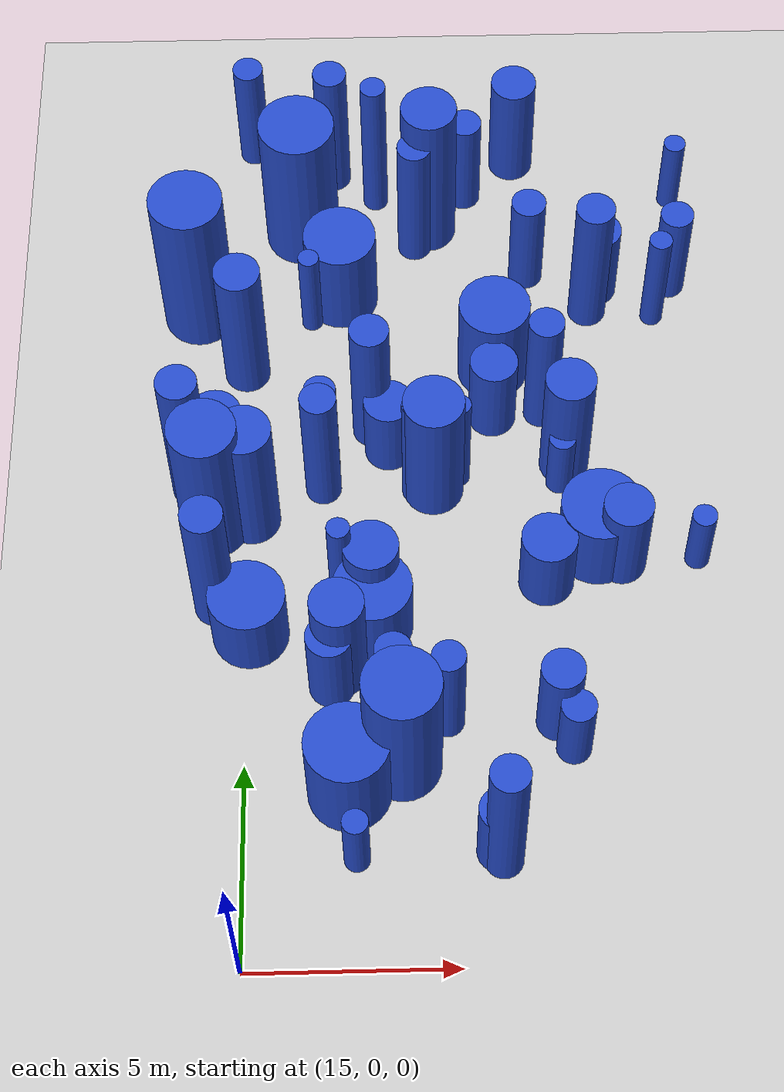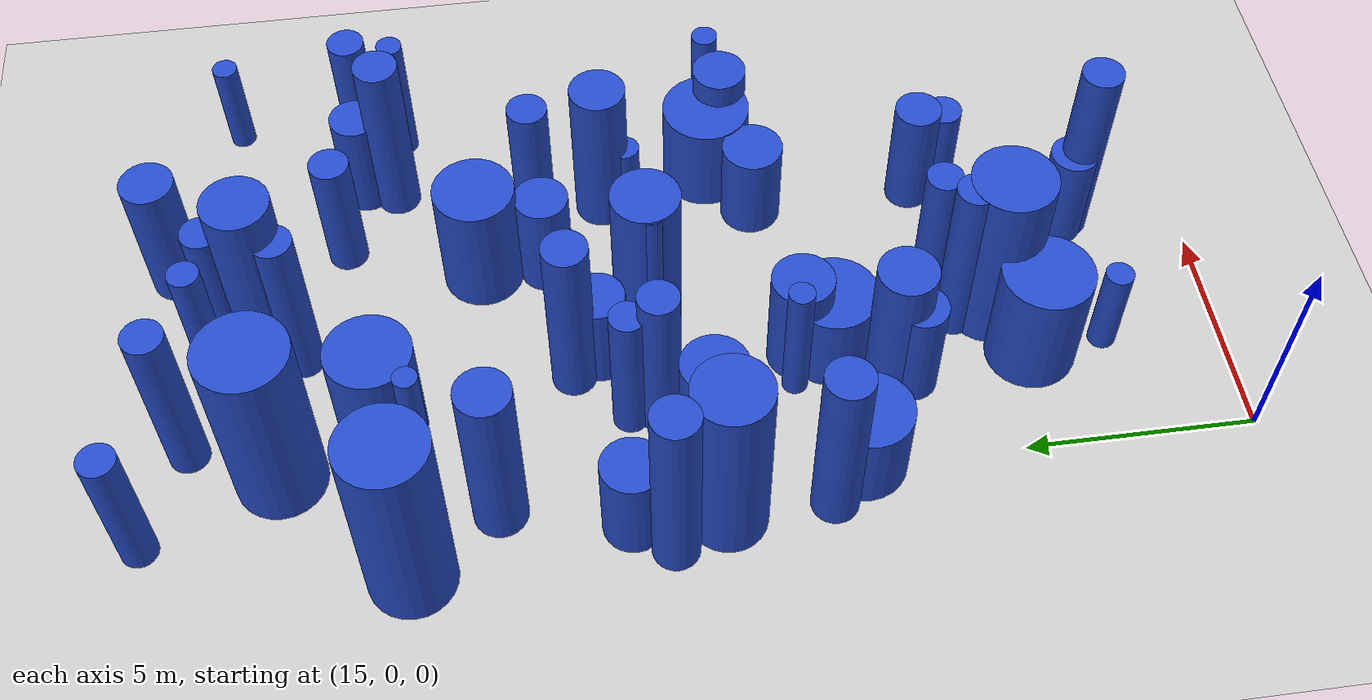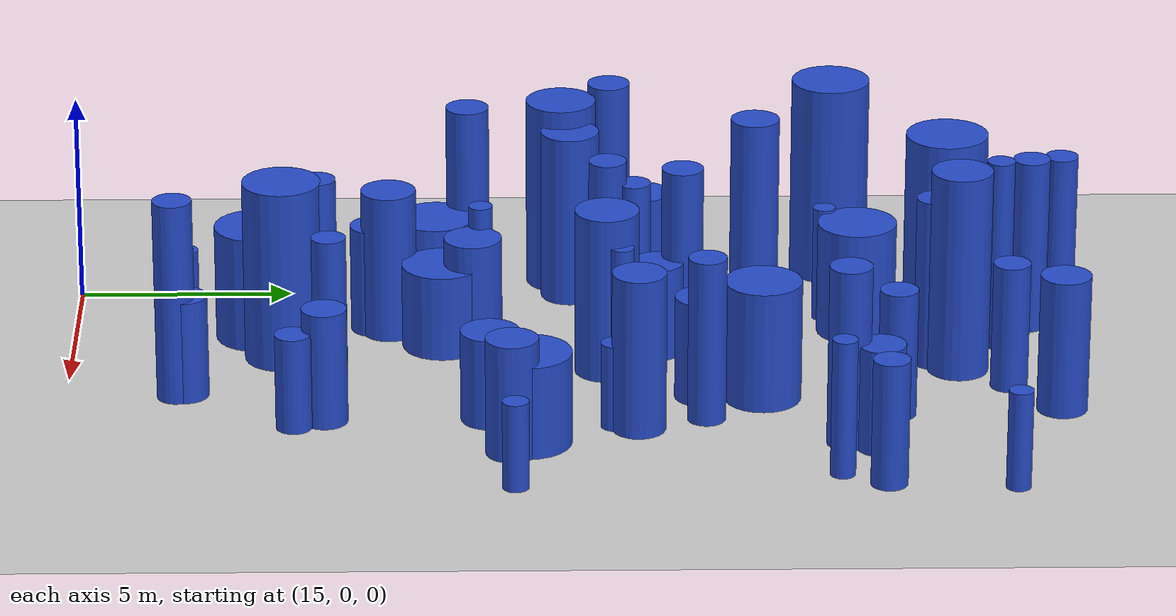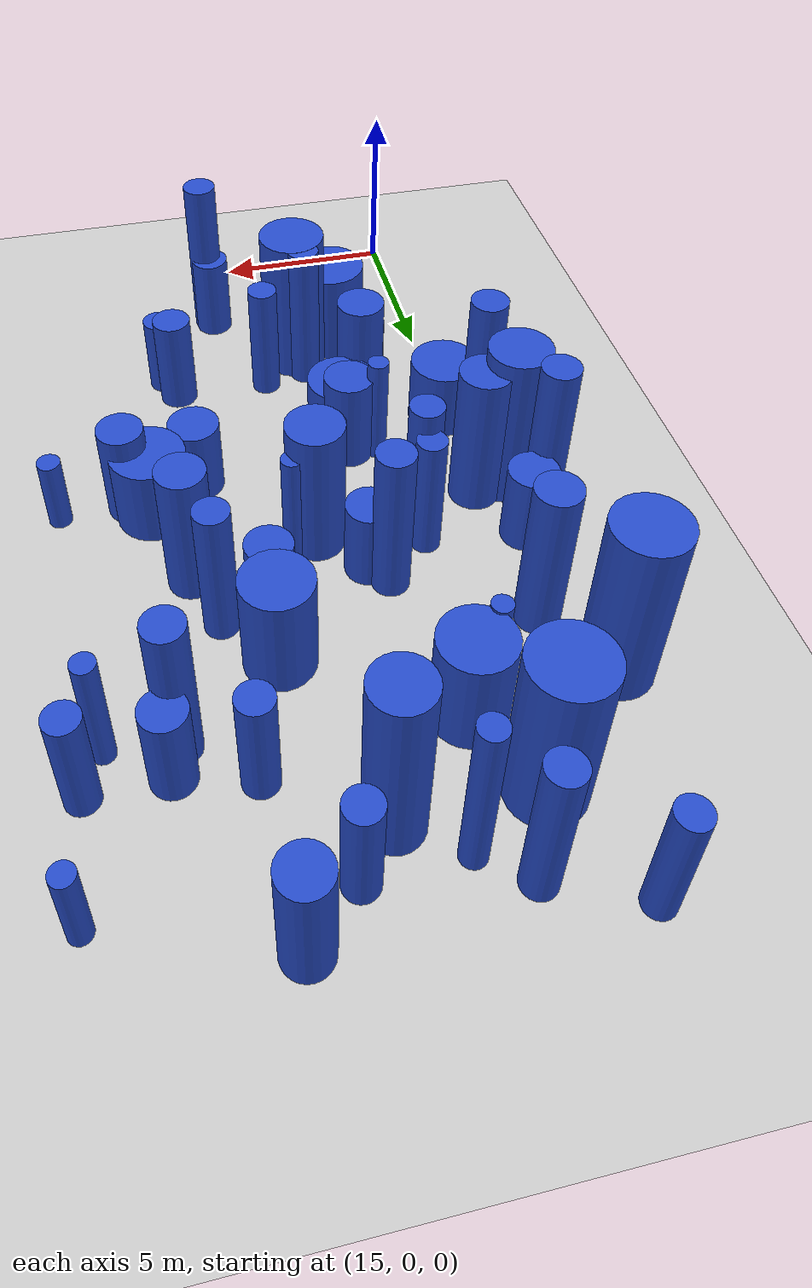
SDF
<sdf version="1.6">
 <world name="default">
  <model name="ground_plane">
   <static>1</static>
   <link name="link">
    <collision name="collision">
     <geometry><plane><normal>0 0 1</normal><size>100 100</size></plane></geometry>
     <surface><friction><ode><mu>100</mu><mu2>50</mu2></ode></friction></surface>
    </collision>
    <visual name="visual">
     <cast_shadows>0</cast_shadows>
     <geometry><plane><normal>0 0 1</normal><size>100 100</size></plane></geometry>
     <material>
      <script><uri>file://media/materials/scripts/gazebo.material</uri><name>Gazebo/Grey</name></script>
     </material>
    </visual>
   </link>
  </model>
  <model name="5">
   <static>0</static>
   <link name="link">
    <inertial>
     <mass>2</mass>
     <inertia>
      <ixx>1.85446</ixx>
      <ixy>0</ixy>
      <ixz>0</ixz>
      <iyy>1.85446</iyy>
      <iyz>0</iyz>
      <izz>0.0841204</izz>
     </inertia>
    </inertial>
    <collision name="collision">
     <geometry><cylinder><length>3.29763</length><radius>0.290035</radius></cylinder></geometry>
     <surface><contact><collide_without_contact>1</collide_without_contact></contact></surface>
    </collision>
    <visual name="visual">
     <geometry><cylinder><length>3.29763</length><radius>0.290035</radius></cylinder></geometry>
     <material>
      <script><uri>file://media/materials/scripts/gazebo.material</uri><name>Gazebo/Blue</name></script>
     </material>
    </visual>
    <gravity>0</gravity>
   </link>
   <pose>25.4526 17.6829 1.64882 0 -0 0</pose>
  </model>
  <model name="7">
   <static>0</static>
   <link name="link">
    <inertial>
     <mass>2</mass>
     <inertia>
      <ixx>0.786749</ixx>
      <ixy>0</ixy>
      <ixz>0</ixz>
      <iyy>0.786749</iyy>
      <iyz>0</iyz>
      <izz>0.0926018</izz>
     </inertia>
    </inertial>
    <collision name="collision">
     <geometry><cylinder><length>2.10777</length><radius>0.304305</radius></cylinder></geometry>
     <surface><contact><collide_without_contact>1</collide_without_contact></contact></surface>
    </collision>
    <visual name="visual">
     <geometry><cylinder><length>2.10777</length><radius>0.304305</radius></cylinder></geometry>
     <material>
      <script><uri>file://media/materials/scripts/gazebo.material</uri><name>Gazebo/Blue</name></script>
     </material>
    </visual>
    <gravity>0</gravity>
   </link>
   <pose>26.0501 10.3515 1.05388 0 -0 0</pose>
  </model>
  <model name="20">
   <static>0</static>
   <link name="link">
    <inertial>
     <mass>2</mass>
     <inertia><ixx>3.66593</ixx><ixy>0</ixy><ixz>0</ixz><iyy>3.66593</iyy><iyz>0</iyz><izz>0.841816</izz></inertia>
    </inertial>
    <collision name="collision">
     <geometry><cylinder><length>4.4125</length><radius>0.917505</radius></cylinder></geometry>
     <surface><contact><collide_without_contact>1</collide_without_contact></contact></surface>
    </collision>
    <visual name="visual">
     <geometry><cylinder><length>4.4125</length><radius>0.917505</radius></cylinder></geometry>
     <material>
      <script><uri>file://media/materials/scripts/gazebo.material</uri><name>Gazebo/Blue</name></script>
     </material>
    </visual>
    <gravity>0</gravity>
   </link>
   <pose>18.7168 4.95866 2.20625 0 -0 0</pose>
  </model>
  <model name="33">
   <static>0</static>
   <link name="link">
    <inertial>
     <mass>2</mass>
     <inertia><ixx>3.10542</ixx><ixy>0</ixy><ixz>0</ixz><iyy>3.10542</iyy><iyz>0</iyz><izz>0.188951</izz></inertia>
    </inertial>
    <collision name="collision">
     <geometry><cylinder><length>4.25037</length><radius>0.434685</radius></cylinder></geometry>
     <surface><contact><collide_without_contact>1</collide_without_contact></contact></surface>
    </collision>
    <visual name="visual">
     <geometry><cylinder><length>4.25037</length><radius>0.434685</radius></cylinder></geometry>
     <material>
      <script><uri>file://media/materials/scripts/gazebo.material</uri><name>Gazebo/Blue</name></script>
     </material>
    </visual>
    <gravity>0</gravity>
   </link>
   <pose>17.1407 22.5153 2.12519 0 -0 0</pose>
  </model>
  <model name="34">
   <static>0</static>
   <link name="link">
    <inertial>
     <mass>2</mass>
     <inertia>
      <ixx>2.68848</ixx>
      <ixy>0</ixy>
      <ixz>0</ixz>
      <iyy>2.68848</iyy>
      <iyz>0</iyz>
      <izz>0.0949899</izz>
     </inertia>
    </inertial>
    <collision name="collision">
     <geometry><cylinder><length>3.98069</length><radius>0.308204</radius></cylinder></geometry>
     <surface><contact><collide_without_contact>1</collide_without_contact></contact></surface>
    </collision>
    <visual name="visual">
     <geometry><cylinder><length>3.98069</length><radius>0.308204</radius></cylinder></geometry>
     <material>
      <script><uri>file://media/materials/scripts/gazebo.material</uri><name>Gazebo/Blue</name></script>
     </material>
    </visual>
    <gravity>0</gravity>
   </link>
   <pose>19.1357 12.4341 1.99035 0 -0 0</pose>
  </model>
  <model name="42">
   <static>0</static>
   <link name="link">
    <inertial>
     <mass>2</mass>
     <inertia><ixx>2.01453</ixx><ixy>0</ixy><ixz>0</ixz><iyy>2.01453</iyy><iyz>0</iyz><izz>0.344549</izz></inertia>
    </inertial>
    <collision name="collision">
     <geometry><cylinder><length>3.32468</length><radius>0.586983</radius></cylinder></geometry>
     <surface><contact><collide_without_contact>1</collide_without_contact></contact></surface>
    </collision>
    <visual name="visual">
     <geometry><cylinder><length>3.32468</length><radius>0.586983</radius></cylinder></geometry>
     <material>
      <script><uri>file://media/materials/scripts/gazebo.material</uri><name>Gazebo/Blue</name></script>
     </material>
    </visual>
    <gravity>0</gravity>
   </link>
   <pose>21.9562 22.9154 1.66234 0 -0 0</pose>
  </model>
  <model name="51">
   <static>0</static>
   <link name="link">
    <inertial>
     <mass>2</mass>
     <inertia><ixx>1.8187</ixx><ixy>0</ixy><ixz>0</ixz><iyy>1.8187</iyy><iyz>0</iyz><izz>0.803823</izz></inertia>
    </inertial>
    <collision name="collision">
     <geometry><cylinder><length>2.91561</length><radius>0.896562</radius></cylinder></geometry>
     <surface><contact><collide_without_contact>1</collide_without_contact></contact></surface>
    </collision>
    <visual name="visual">
     <geometry><cylinder><length>2.91561</length><radius>0.896562</radius></cylinder></geometry>
     <material>
      <script><uri>file://media/materials/scripts/gazebo.material</uri><name>Gazebo/Blue</name></script>
     </material>
    </visual>
    <gravity>0</gravity>
   </link>
   <pose>21.2134 16.0586 1.4578 0 -0 0</pose>
  </model>
  <model name="52">
   <static>0</static>
   <link name="link">
    <inertial>
     <mass>2</mass>
     <inertia><ixx>2.36568</ixx><ixy>0</ixy><ixz>0</ixz><iyy>2.36568</iyy><iyz>0</iyz><izz>0.418317</izz></inertia>
    </inertial>
    <collision name="collision">
     <geometry><cylinder><length>3.5971</length><radius>0.646775</radius></cylinder></geometry>
     <surface><contact><collide_without_contact>1</collide_without_contact></contact></surface>
    </collision>
    <visual name="visual">
     <geometry><cylinder><length>3.5971</length><radius>0.646775</radius></cylinder></geometry>
     <material>
      <script><uri>file://media/materials/scripts/gazebo.material</uri><name>Gazebo/Blue</name></script>
     </material>
    </visual>
    <gravity>0</gravity>
   </link>
   <pose>17.268 7.40656 1.79855 0 -0 0</pose>
  </model>
  <model name="53">
   <static>0</static>
   <link name="link">
    <inertial>
     <mass>2</mass>
     <inertia><ixx>2.66253</ixx><ixy>0</ixy><ixz>0</ixz><iyy>2.66253</iyy><iyz>0</iyz><izz>0.387502</izz></inertia>
    </inertial>
    <collision name="collision">
     <geometry><cylinder><length>3.84872</length><radius>0.622496</radius></cylinder></geometry>
     <surface><contact><collide_without_contact>1</collide_without_contact></contact></surface>
    </collision>
    <visual name="visual">
     <geometry><cylinder><length>3.84872</length><radius>0.622496</radius></cylinder></geometry>
     <material>
      <script><uri>file://media/materials/scripts/gazebo.material</uri><name>Gazebo/Blue</name></script>
     </material>
    </visual>
    <gravity>0</gravity>
   </link>
   <pose>22.9097 13.1703 1.92436 0 -0 0</pose>
  </model>
  <model name="69">
   <static>0</static>
   <link name="link">
    <inertial>
     <mass>2</mass>
     <inertia><ixx>1.2354</ixx><ixy>0</ixy><ixz>0</ixz><iyy>1.2354</iyy><iyz>0</iyz><izz>0.302272</izz></inertia>
    </inertial>
    <collision name="collision">
     <geometry><cylinder><length>2.5506</length><radius>0.549793</radius></cylinder></geometry>
     <surface><contact><collide_without_contact>1</collide_without_contact></contact></surface>
    </collision>
    <visual name="visual">
     <geometry><cylinder><length>2.5506</length><radius>0.549793</radius></cylinder></geometry>
     <material>
      <script><uri>file://media/materials/scripts/gazebo.material</uri><name>Gazebo/Blue</name></script>
     </material>
    </visual>
    <gravity>0</gravity>
   </link>
   <pose>24.0203 18.6117 1.2753 0 -0 0</pose>
  </model>
  <model name="71">
   <static>0</static>
   <link name="link">
    <inertial>
     <mass>2</mass>
     <inertia><ixx>1.5047</ixx><ixy>0</ixy><ixz>0</ixz><iyy>1.5047</iyy><iyz>0</iyz><izz>0.368322</izz></inertia>
    </inertial>
    <collision name="collision">
     <geometry><cylinder><length>2.81482</length><radius>0.606895</radius></cylinder></geometry>
     <surface><contact><collide_without_contact>1</collide_without_contact></contact></surface>
    </collision>
    <visual name="visual">
     <geometry><cylinder><length>2.81482</length><radius>0.606895</radius></cylinder></geometry>
     <material>
      <script><uri>file://media/materials/scripts/gazebo.material</uri><name>Gazebo/Blue</name></script>
     </material>
    </visual>
    <gravity>0</gravity>
   </link>
   <pose>24.1776 10.2792 1.40741 0 -0 0</pose>
  </model>
  <model name="78">
   <static>0</static>
   <link name="link">
    <inertial>
     <mass>2</mass>
     <inertia><ixx>1.04196</ixx><ixy>0</ixy><ixz>0</ixz><iyy>1.04196</iyy><iyz>0</iyz><izz>0.37835</izz></inertia>
    </inertial>
    <collision name="collision">
     <geometry><cylinder><length>2.26201</length><radius>0.615102</radius></cylinder></geometry>
     <surface><contact><collide_without_contact>1</collide_without_contact></contact></surface>
    </collision>
    <visual name="visual">
     <geometry><cylinder><length>2.26201</length><radius>0.615102</radius></cylinder></geometry>
     <material>
      <script><uri>file://media/materials/scripts/gazebo.material</uri><name>Gazebo/Blue</name></script>
     </material>
    </visual>
    <gravity>0</gravity>
   </link>
   <pose>18.5113 13.6926 1.131 0 -0 0</pose>
  </model>
  <model name="80">
   <static>0</static>
   <link name="link">
    <inertial>
     <mass>2</mass>
     <inertia><ixx>1.70039</ixx><ixy>0</ixy><ixz>0</ixz><iyy>1.70039</iyy><iyz>0</iyz><izz>0.196762</izz></inertia>
    </inertial>
    <collision name="collision">
     <geometry><cylinder><length>3.10033</length><radius>0.443578</radius></cylinder></geometry>
     <surface><contact><collide_without_contact>1</collide_without_contact></contact></surface>
    </collision>
    <visual name="visual">
     <geometry><cylinder><length>3.10033</length><radius>0.443578</radius></cylinder></geometry>
     <material>
      <script><uri>file://media/materials/scripts/gazebo.material</uri><name>Gazebo/Blue</name></script>
     </material>
    </visual>
    <gravity>0</gravity>
   </link>
   <pose>22.1964 19.1009 1.55016 0 -0 0</pose>
  </model>
  <model name="92">
   <static>0</static>
   <link name="link">
    <inertial>
     <mass>2</mass>
     <inertia><ixx>2.9796</ixx><ixy>0</ixy><ixz>0</ixz><iyy>2.9796</iyy><iyz>0</iyz><izz>0.564104</izz></inertia>
    </inertial>
    <collision name="collision">
     <geometry><cylinder><length>4.02309</length><radius>0.751069</radius></cylinder></geometry>
     <surface><contact><collide_without_contact>1</collide_without_contact></contact></surface>
    </collision>
    <visual name="visual">
     <geometry><cylinder><length>4.02309</length><radius>0.751069</radius></cylinder></geometry>
     <material>
      <script><uri>file://media/materials/scripts/gazebo.material</uri><name>Gazebo/Blue</name></script>
     </material>
    </visual>
    <gravity>0</gravity>
   </link>
   <pose>19.6033 12.4969 2.01155 0 -0 0</pose>
  </model>
  <model name="96">
   <static>0</static>
   <link name="link">
    <inertial>
     <mass>2</mass>
     <inertia><ixx>1.3536</ixx><ixy>0</ixy><ixz>0</ixz><iyy>1.3536</iyy><iyz>0</iyz><izz>0.0711329</izz></inertia>
    </inertial>
    <collision name="collision">
     <geometry><cylinder><length>2.81215</length><radius>0.266707</radius></cylinder></geometry>
     <surface><contact><collide_without_contact>1</collide_without_contact></contact></surface>
    </collision>
    <visual name="visual">
     <geometry><cylinder><length>2.81215</length><radius>0.266707</radius></cylinder></geometry>
     <material>
      <script><uri>file://media/materials/scripts/gazebo.material</uri><name>Gazebo/Blue</name></script>
     </material>
    </visual>
    <gravity>0</gravity>
   </link>
   <pose>16.5562 17.6942 1.40608 0 -0 0</pose>
  </model>
  <model name="112">
   <static>0</static>
   <link name="link">
    <inertial>
     <mass>2</mass>
     <inertia><ixx>3.488</ixx><ixy>0</ixy><ixz>0</ixz><iyy>3.488</iyy><iyz>0</iyz><izz>0.261794</izz></inertia>
    </inertial>
    <collision name="collision">
     <geometry><cylinder><length>4.48805</length><radius>0.511658</radius></cylinder></geometry>
     <surface><contact><collide_without_contact>1</collide_without_contact></contact></surface>
    </collision>
    <visual name="visual">
     <geometry><cylinder><length>4.48805</length><radius>0.511658</radius></cylinder></geometry>
     <material>
      <script><uri>file://media/materials/scripts/gazebo.material</uri><name>Gazebo/Blue</name></script>
     </material>
    </visual>
    <gravity>0</gravity>
   </link>
   <pose>14.2304 9.25693 2.24403 0 -0 0</pose>
  </model>
  <model name="129">
   <static>0</static>
   <link name="link">
    <inertial>
     <mass>2</mass>
     <inertia><ixx>1.03231</ixx><ixy>0</ixy><ixz>0</ixz><iyy>1.03231</iyy><iyz>0</iyz><izz>0.463114</izz></inertia>
    </inertial>
    <collision name="collision">
     <geometry><cylinder><length>2.19191</length><radius>0.680525</radius></cylinder></geometry>
     <surface><contact><collide_without_contact>1</collide_without_contact></contact></surface>
    </collision>
    <visual name="visual">
     <geometry><cylinder><length>2.19191</length><radius>0.680525</radius></cylinder></geometry>
     <material>
      <script><uri>file://media/materials/scripts/gazebo.material</uri><name>Gazebo/Blue</name></script>
     </material>
    </visual>
    <gravity>0</gravity>
   </link>
   <pose>22.3022 9.78232 1.09596 0 -0 0</pose>
  </model>
  <model name="135">
   <static>0</static>
   <link name="link">
    <inertial>
     <mass>2</mass>
     <inertia>
      <ixx>1.90516</ixx>
      <ixy>0</ixy>
      <ixz>0</ixz>
      <iyy>1.90516</iyy>
      <iyz>0</iyz>
      <izz>0.0770723</izz>
     </inertia>
    </inertial>
    <collision name="collision">
     <geometry><cylinder><length>3.3466</length><radius>0.277619</radius></cylinder></geometry>
     <surface><contact><collide_without_contact>1</collide_without_contact></contact></surface>
    </collision>
    <visual name="visual">
     <geometry><cylinder><length>3.3466</length><radius>0.277619</radius></cylinder></geometry>
     <material>
      <script><uri>file://media/materials/scripts/gazebo.material</uri><name>Gazebo/Blue</name></script>
     </material>
    </visual>
    <gravity>0</gravity>
   </link>
   <pose>20.2434 12.836 1.6733 0 -0 0</pose>
  </model>
  <model name="162">
   <static>0</static>
   <link name="link">
    <inertial>
     <mass>2</mass>
     <inertia><ixx>2.97159</ixx><ixy>0</ixy><ixz>0</ixz><iyy>2.97159</iyy><iyz>0</iyz><izz>0.193947</izz></inertia>
    </inertial>
    <collision name="collision">
     <geometry><cylinder><length>4.15304</length><radius>0.440394</radius></cylinder></geometry>
     <surface><contact><collide_without_contact>1</collide_without_contact></contact></surface>
    </collision>
    <visual name="visual">
     <geometry><cylinder><length>4.15304</length><radius>0.440394</radius></cylinder></geometry>
     <material>
      <script><uri>file://media/materials/scripts/gazebo.material</uri><name>Gazebo/Blue</name></script>
     </material>
    </visual>
    <gravity>0</gravity>
   </link>
   <pose>19.2849 20.1109 2.07652 0 -0 0</pose>
  </model>
  <model name="166">
   <static>0</static>
   <link name="link">
    <inertial>
     <mass>2</mass>
     <inertia><ixx>3.32749</ixx><ixy>0</ixy><ixz>0</ixz><iyy>3.32749</iyy><iyz>0</iyz><izz>0.185958</izz></inertia>
    </inertial>
    <collision name="collision">
     <geometry><cylinder><length>4.40534</length><radius>0.431229</radius></cylinder></geometry>
     <surface><contact><collide_without_contact>1</collide_without_contact></contact></surface>
    </collision>
    <visual name="visual">
     <geometry><cylinder><length>4.40534</length><radius>0.431229</radius></cylinder></geometry>
     <material>
      <script><uri>file://media/materials/scripts/gazebo.material</uri><name>Gazebo/Blue</name></script>
     </material>
    </visual>
    <gravity>0</gravity>
   </link>
   <pose>18.5444 5.78636 2.20267 0 -0 0</pose>
  </model>
  <model name="190">
   <static>0</static>
   <link name="link">
    <inertial>
     <mass>2</mass>
     <inertia>
      <ixx>1.52095</ixx>
      <ixy>0</ixy>
      <ixz>0</ixz>
      <iyy>1.52095</iyy>
      <iyz>0</iyz>
      <izz>0.0884812</izz>
     </inertia>
    </inertial>
    <collision name="collision">
     <geometry><cylinder><length>2.97662</length><radius>0.297458</radius></cylinder></geometry>
     <surface><contact><collide_without_contact>1</collide_without_contact></contact></surface>
    </collision>
    <visual name="visual">
     <geometry><cylinder><length>2.97662</length><radius>0.297458</radius></cylinder></geometry>
     <material>
      <script><uri>file://media/materials/scripts/gazebo.material</uri><name>Gazebo/Blue</name></script>
     </material>
    </visual>
    <gravity>0</gravity>
   </link>
   <pose>18.8821 4.50562 1.48831 0 -0 0</pose>
  </model>
  <model name="222">
   <static>0</static>
   <link name="link">
    <inertial>
     <mass>2</mass>
     <inertia><ixx>1.44566</ixx><ixy>0</ixy><ixz>0</ixz><iyy>1.44566</iyy><iyz>0</iyz><izz>0.461568</izz></inertia>
    </inertial>
    <collision name="collision">
     <geometry><cylinder><length>2.69986</length><radius>0.679388</radius></cylinder></geometry>
     <surface><contact><collide_without_contact>1</collide_without_contact></contact></surface>
    </collision>
    <visual name="visual">
     <geometry><cylinder><length>2.69986</length><radius>0.679388</radius></cylinder></geometry>
     <material>
      <script><uri>file://media/materials/scripts/gazebo.material</uri><name>Gazebo/Blue</name></script>
     </material>
    </visual>
    <gravity>0</gravity>
   </link>
   <pose>18.0421 9.38761 1.34993 0 -0 0</pose>
  </model>
  <model name="242">
   <static>0</static>
   <link name="link">
    <inertial>
     <mass>2</mass>
     <inertia><ixx>4.07433</ixx><ixy>0</ixy><ixz>0</ixz><iyy>4.07433</iyy><iyz>0</iyz><izz>0.209536</izz></inertia>
    </inertial>
    <collision name="collision">
     <geometry><cylinder><length>4.88031</length><radius>0.457751</radius></cylinder></geometry>
     <surface><contact><collide_without_contact>1</collide_without_contact></contact></surface>
    </collision>
    <visual name="visual">
     <geometry><cylinder><length>4.88031</length><radius>0.457751</radius></cylinder></geometry>
     <material>
      <script><uri>file://media/materials/scripts/gazebo.material</uri><name>Gazebo/Blue</name></script>
     </material>
    </visual>
    <gravity>0</gravity>
   </link>
   <pose>20.9834 2.55197 2.44015 0 -0 0</pose>
  </model>
  <model name="250">
   <static>0</static>
   <link name="link">
    <inertial>
     <mass>2</mass>
     <inertia><ixx>1.22789</ixx><ixy>0</ixy><ixz>0</ixz><iyy>1.22789</iyy><iyz>0</iyz><izz>0.358455</izz></inertia>
    </inertial>
    <collision name="collision">
     <geometry><cylinder><length>2.50838</length><radius>0.598711</radius></cylinder></geometry>
     <surface><contact><collide_without_contact>1</collide_without_contact></contact></surface>
    </collision>
    <visual name="visual">
     <geometry><cylinder><length>2.50838</length><radius>0.598711</radius></cylinder></geometry>
     <material>
      <script><uri>file://media/materials/scripts/gazebo.material</uri><name>Gazebo/Blue</name></script>
     </material>
    </visual>
    <gravity>0</gravity>
   </link>
   <pose>21.1489 14.6276 1.25419 0 -0 0</pose>
  </model>
  <model name="252">
   <static>0</static>
   <link name="link">
    <inertial>
     <mass>2</mass>
     <inertia>
      <ixx>0.980825</ixx>
      <ixy>0</ixy>
      <ixz>0</ixz>
      <iyy>0.980825</iyy>
      <iyz>0</iyz>
      <izz>0.176721</izz>
     </inertia>
    </inertial>
    <collision name="collision">
     <geometry><cylinder><length>2.31404</length><radius>0.420382</radius></cylinder></geometry>
     <surface><contact><collide_without_contact>1</collide_without_contact></contact></surface>
    </collision>
    <visual name="visual">
     <geometry><cylinder><length>2.31404</length><radius>0.420382</radius></cylinder></geometry>
     <material>
      <script><uri>file://media/materials/scripts/gazebo.material</uri><name>Gazebo/Blue</name></script>
     </material>
    </visual>
    <gravity>0</gravity>
   </link>
   <pose>22.7354 5.31263 1.15702 0 -0 0</pose>
  </model>
  <model name="256">
   <static>0</static>
   <link name="link">
    <inertial>
     <mass>2</mass>
     <inertia><ixx>2.07071</ixx><ixy>0</ixy><ixz>0</ixz><iyy>2.07071</iyy><iyz>0</iyz><izz>0.162681</izz></inertia>
    </inertial>
    <collision name="collision">
     <geometry><cylinder><length>3.45488</length><radius>0.403337</radius></cylinder></geometry>
     <surface><contact><collide_without_contact>1</collide_without_contact></contact></surface>
    </collision>
    <visual name="visual">
     <geometry><cylinder><length>3.45488</length><radius>0.403337</radius></cylinder></geometry>
     <material>
      <script><uri>file://media/materials/scripts/gazebo.material</uri><name>Gazebo/Blue</name></script>
     </material>
    </visual>
    <gravity>0</gravity>
   </link>
   <pose>19.7877 6.06477 1.72744 0 -0 0</pose>
  </model>
  <model name="257">
   <static>0</static>
   <link name="link">
    <inertial>
     <mass>2</mass>
     <inertia><ixx>1.08973</ixx><ixy>0</ixy><ixz>0</ixz><iyy>1.08973</iyy><iyz>0</iyz><izz>0.430316</izz></inertia>
    </inertial>
    <collision name="collision">
     <geometry><cylinder><length>2.29072</length><radius>0.655985</radius></cylinder></geometry>
     <surface><contact><collide_without_contact>1</collide_without_contact></contact></surface>
    </collision>
    <visual name="visual">
     <geometry><cylinder><length>2.29072</length><radius>0.655985</radius></cylinder></geometry>
     <material>
      <script><uri>file://media/materials/scripts/gazebo.material</uri><name>Gazebo/Blue</name></script>
     </material>
    </visual>
    <gravity>0</gravity>
   </link>
   <pose>14.2529 13.4319 1.14536 0 -0 0</pose>
  </model>
  <model name="260">
   <static>0</static>
   <link name="link">
    <inertial>
     <mass>2</mass>
     <inertia><ixx>4.44356</ixx><ixy>0</ixy><ixz>0</ixz><iyy>4.44356</iyy><iyz>0</iyz><izz>0.86281</izz></inertia>
    </inertial>
    <collision name="collision">
     <geometry><cylinder><length>4.90642</length><radius>0.928875</radius></cylinder></geometry>
     <surface><contact><collide_without_contact>1</collide_without_contact></contact></surface>
    </collision>
    <visual name="visual">
     <geometry><cylinder><length>4.90642</length><radius>0.928875</radius></cylinder></geometry>
     <material>
      <script><uri>file://media/materials/scripts/gazebo.material</uri><name>Gazebo/Blue</name></script>
     </material>
    </visual>
    <gravity>0</gravity>
   </link>
   <pose>13.6186 17.9647 2.45321 0 -0 0</pose>
  </model>
  <model name="262">
   <static>0</static>
   <link name="link">
    <inertial>
     <mass>2</mass>
     <inertia><ixx>2.23197</ixx><ixy>0</ixy><ixz>0</ixz><iyy>2.23197</iyy><iyz>0</iyz><izz>0.15109</izz></inertia>
    </inertial>
    <collision name="collision">
     <geometry><cylinder><length>3.59702</length><radius>0.388703</radius></cylinder></geometry>
     <surface><contact><collide_without_contact>1</collide_without_contact></contact></surface>
    </collision>
    <visual name="visual">
     <geometry><cylinder><length>3.59702</length><radius>0.388703</radius></cylinder></geometry>
     <material>
      <script><uri>file://media/materials/scripts/gazebo.material</uri><name>Gazebo/Blue</name></script>
     </material>
    </visual>
    <gravity>0</gravity>
   </link>
   <pose>16.882 13.1905 1.79851 0 -0 0</pose>
  </model>
  <model name="279">
   <static>0</static>
   <link name="link">
    <inertial>
     <mass>2</mass>
     <inertia>
      <ixx>0.773838</ixx>
      <ixy>0</ixy>
      <ixz>0</ixz>
      <iyy>0.773838</iyy>
      <iyz>0</iyz>
      <izz>0.110661</izz>
     </inertia>
    </inertial>
    <collision name="collision">
     <geometry><cylinder><length>2.07631</length><radius>0.332657</radius></cylinder></geometry>
     <surface><contact><collide_without_contact>1</collide_without_contact></contact></surface>
    </collision>
    <visual name="visual">
     <geometry><cylinder><length>2.07631</length><radius>0.332657</radius></cylinder></geometry>
     <material>
      <script><uri>file://media/materials/scripts/gazebo.material</uri><name>Gazebo/Blue</name></script>
     </material>
    </visual>
    <gravity>0</gravity>
   </link>
   <pose>22.7639 12.6322 1.03815 0 -0 0</pose>
  </model>
  <model name="282">
   <static>0</static>
   <link name="link">
    <inertial>
     <mass>2</mass>
     <inertia><ixx>2.96456</ixx><ixy>0</ixy><ixz>0</ixz><iyy>2.96456</iyy><iyz>0</iyz><izz>0.198054</izz></inertia>
    </inertial>
    <collision name="collision">
     <geometry><cylinder><length>4.14647</length><radius>0.445032</radius></cylinder></geometry>
     <surface><contact><collide_without_contact>1</collide_without_contact></contact></surface>
    </collision>
    <visual name="visual">
     <geometry><cylinder><length>4.14647</length><radius>0.445032</radius></cylinder></geometry>
     <material>
      <script><uri>file://media/materials/scripts/gazebo.material</uri><name>Gazebo/Blue</name></script>
     </material>
    </visual>
    <gravity>0</gravity>
   </link>
   <pose>16.8539 12.5617 2.07324 0 -0 0</pose>
  </model>
  <model name="293">
   <static>0</static>
   <link name="link">
    <inertial>
     <mass>2</mass>
     <inertia><ixx>1.30417</ixx><ixy>0</ixy><ixz>0</ixz><iyy>1.30417</iyy><iyz>0</iyz><izz>0.310455</izz></inertia>
    </inertial>
    <collision name="collision">
     <geometry><cylinder><length>2.62558</length><radius>0.557185</radius></cylinder></geometry>
     <surface><contact><collide_without_contact>1</collide_without_contact></contact></surface>
    </collision>
    <visual name="visual">
     <geometry><cylinder><length>2.62558</length><radius>0.557185</radius></cylinder></geometry>
     <material>
      <script><uri>file://media/materials/scripts/gazebo.material</uri><name>Gazebo/Blue</name></script>
     </material>
    </visual>
    <gravity>0</gravity>
   </link>
   <pose>17.0593 7.05036 1.31279 0 -0 0</pose>
  </model>
  <model name="312">
   <static>0</static>
   <link name="link">
    <inertial>
     <mass>2</mass>
     <inertia>
      <ixx>0.897368</ixx>
      <ixy>0</ixy>
      <ixz>0</ixz>
      <iyy>0.897368</iyy>
      <iyz>0</iyz>
      <izz>0.0944157</izz>
     </inertia>
    </inertial>
    <collision name="collision">
     <geometry><cylinder><length>2.25853</length><radius>0.307271</radius></cylinder></geometry>
     <surface><contact><collide_without_contact>1</collide_without_contact></contact></surface>
    </collision>
    <visual name="visual">
     <geometry><cylinder><length>2.25853</length><radius>0.307271</radius></cylinder></geometry>
     <material>
      <script><uri>file://media/materials/scripts/gazebo.material</uri><name>Gazebo/Blue</name></script>
     </material>
    </visual>
    <gravity>0</gravity>
   </link>
   <pose>17.6253 2.63599 1.12927 0 -0 0</pose>
  </model>
  <model name="313">
   <static>0</static>
   <link name="link">
    <inertial>
     <mass>2</mass>
     <inertia><ixx>3.40692</ixx><ixy>0</ixy><ixz>0</ixz><iyy>3.40692</iyy><iyz>0</iyz><izz>0.335244</izz></inertia>
    </inertial>
    <collision name="collision">
     <geometry><cylinder><length>4.4086</length><radius>0.579002</radius></cylinder></geometry>
     <surface><contact><collide_without_contact>1</collide_without_contact></contact></surface>
    </collision>
    <visual name="visual">
     <geometry><cylinder><length>4.4086</length><radius>0.579002</radius></cylinder></geometry>
     <material>
      <script><uri>file://media/materials/scripts/gazebo.material</uri><name>Gazebo/Blue</name></script>
     </material>
    </visual>
    <gravity>0</gravity>
   </link>
   <pose>14.8838 16.1124 2.2043 0 -0 0</pose>
  </model>
  <model name="326">
   <static>0</static>
   <link name="link">
    <inertial>
     <mass>2</mass>
     <inertia><ixx>3.93219</ixx><ixy>0</ixy><ixz>0</ixz><iyy>3.93219</iyy><iyz>0</iyz><izz>0.94302</izz></inertia>
    </inertial>
    <collision name="collision">
     <geometry><cylinder><length>4.55676</length><radius>0.971092</radius></cylinder></geometry>
     <surface><contact><collide_without_contact>1</collide_without_contact></contact></surface>
    </collision>
    <visual name="visual">
     <geometry><cylinder><length>4.55676</length><radius>0.971092</radius></cylinder></geometry>
     <material>
      <script><uri>file://media/materials/scripts/gazebo.material</uri><name>Gazebo/Blue</name></script>
     </material>
    </visual>
    <gravity>0</gravity>
   </link>
   <pose>16.3039 20.5783 2.27838 0 -0 0</pose>
  </model>
  <model name="336">
   <static>0</static>
   <link name="link">
    <inertial>
     <mass>2</mass>
     <inertia>
      <ixx>1.74958</ixx>
      <ixy>0</ixy>
      <ixz>0</ixz>
      <iyy>1.74958</iyy>
      <iyz>0</iyz>
      <izz>0.0806815</izz>
     </inertia>
    </inertial>
    <collision name="collision">
     <geometry><cylinder><length>3.20241</length><radius>0.284045</radius></cylinder></geometry>
     <surface><contact><collide_without_contact>1</collide_without_contact></contact></surface>
    </collision>
    <visual name="visual">
     <geometry><cylinder><length>3.20241</length><radius>0.284045</radius></cylinder></geometry>
     <material>
      <script><uri>file://media/materials/scripts/gazebo.material</uri><name>Gazebo/Blue</name></script>
     </material>
    </visual>
    <gravity>0</gravity>
   </link>
   <pose>17.2965 9.57252 1.6012 0 -0 0</pose>
  </model>
  <model name="345">
   <static>0</static>
   <link name="link">
    <inertial>
     <mass>2</mass>
     <inertia><ixx>3.9159</ixx><ixy>0</ixy><ixz>0</ixz><iyy>3.9159</iyy><iyz>0</iyz><izz>0.691147</izz></inertia>
    </inertial>
    <collision name="collision">
     <geometry><cylinder><length>4.62839</length><radius>0.831353</radius></cylinder></geometry>
     <surface><contact><collide_without_contact>1</collide_without_contact></contact></surface>
    </collision>
    <visual name="visual">
     <geometry><cylinder><length>4.62839</length><radius>0.831353</radius></cylinder></geometry>
     <material>
      <script><uri>file://media/materials/scripts/gazebo.material</uri><name>Gazebo/Blue</name></script>
     </material>
    </visual>
    <gravity>0</gravity>
   </link>
   <pose>14.17 11.4912 2.31419 0 -0 0</pose>
  </model>
  <model name="353">
   <static>0</static>
   <link name="link">
    <inertial>
     <mass>2</mass>
     <inertia><ixx>3.65204</ixx><ixy>0</ixy><ixz>0</ixz><iyy>3.65204</iyy><iyz>0</iyz><izz>0.106101</izz></inertia>
    </inertial>
    <collision name="collision">
     <geometry><cylinder><length>4.64693</length><radius>0.325731</radius></cylinder></geometry>
     <surface><contact><collide_without_contact>1</collide_without_contact></contact></surface>
    </collision>
    <visual name="visual">
     <geometry><cylinder><length>4.64693</length><radius>0.325731</radius></cylinder></geometry>
     <material>
      <script><uri>file://media/materials/scripts/gazebo.material</uri><name>Gazebo/Blue</name></script>
     </material>
    </visual>
    <gravity>0</gravity>
   </link>
   <pose>18.2594 21.6972 2.32346 0 -0 0</pose>
  </model>
  <model name="367">
   <static>0</static>
   <link name="link">
    <inertial>
     <mass>2</mass>
     <inertia><ixx>3.40969</ixx><ixy>0</ixy><ixz>0</ixz><iyy>3.40969</iyy><iyz>0</iyz><izz>0.239374</izz></inertia>
    </inertial>
    <collision name="collision">
     <geometry><cylinder><length>4.44297</length><radius>0.489259</radius></cylinder></geometry>
     <surface><contact><collide_without_contact>1</collide_without_contact></contact></surface>
    </collision>
    <visual name="visual">
     <geometry><cylinder><length>4.44297</length><radius>0.489259</radius></cylinder></geometry>
     <material>
      <script><uri>file://media/materials/scripts/gazebo.material</uri><name>Gazebo/Blue</name></script>
     </material>
    </visual>
    <gravity>0</gravity>
   </link>
   <pose>18.0912 14.2881 2.22149 0 -0 0</pose>
  </model>
  <model name="377">
   <static>0</static>
   <link name="link">
    <inertial>
     <mass>2</mass>
     <inertia><ixx>1.43639</ixx><ixy>0</ixy><ixz>0</ixz><iyy>1.43639</iyy><iyz>0</iyz><izz>0.27141</izz></inertia>
    </inertial>
    <collision name="collision">
     <geometry><cylinder><length>2.79358</length><radius>0.52097</radius></cylinder></geometry>
     <surface><contact><collide_without_contact>1</collide_without_contact></contact></surface>
    </collision>
    <visual name="visual">
     <geometry><cylinder><length>2.79358</length><radius>0.52097</radius></cylinder></geometry>
     <material>
      <script><uri>file://media/materials/scripts/gazebo.material</uri><name>Gazebo/Blue</name></script>
     </material>
    </visual>
    <gravity>0</gravity>
   </link>
   <pose>22.3936 6.01531 1.39679 0 -0 0</pose>
  </model>
  <model name="382">
   <static>0</static>
   <link name="link">
    <inertial>
     <mass>2</mass>
     <inertia><ixx>1.61995</ixx><ixy>0</ixy><ixz>0</ixz><iyy>1.61995</iyy><iyz>0</iyz><izz>0.178659</izz></inertia>
    </inertial>
    <collision name="collision">
     <geometry><cylinder><length>3.03047</length><radius>0.422681</radius></cylinder></geometry>
     <surface><contact><collide_without_contact>1</collide_without_contact></contact></surface>
    </collision>
    <visual name="visual">
     <geometry><cylinder><length>3.03047</length><radius>0.422681</radius></cylinder></geometry>
     <material>
      <script><uri>file://media/materials/scripts/gazebo.material</uri><name>Gazebo/Blue</name></script>
     </material>
    </visual>
    <gravity>0</gravity>
   </link>
   <pose>25.9654 18.6933 1.51523 0 -0 0</pose>
  </model>
  <model name="383">
   <static>0</static>
   <link name="link">
    <inertial>
     <mass>2</mass>
     <inertia><ixx>3.26985</ixx><ixy>0</ixy><ixz>0</ixz><iyy>3.26985</iyy><iyz>0</iyz><izz>0.240803</izz></inertia>
    </inertial>
    <collision name="collision">
     <geometry><cylinder><length>4.34703</length><radius>0.490717</radius></cylinder></geometry>
     <surface><contact><collide_without_contact>1</collide_without_contact></contact></surface>
    </collision>
    <visual name="visual">
     <geometry><cylinder><length>4.34703</length><radius>0.490717</radius></cylinder></geometry>
     <material>
      <script><uri>file://media/materials/scripts/gazebo.material</uri><name>Gazebo/Blue</name></script>
     </material>
    </visual>
    <gravity>0</gravity>
   </link>
   <pose>23.7609 17.8959 2.17352 0 -0 0</pose>
  </model>
  <model name="391">
   <static>0</static>
   <link name="link">
    <inertial>
     <mass>2</mass>
     <inertia><ixx>1.67117</ixx><ixy>0</ixy><ixz>0</ixz><iyy>1.67117</iyy><iyz>0</iyz><izz>0.189384</izz></inertia>
    </inertial>
    <collision name="collision">
     <geometry><cylinder><length>3.07553</length><radius>0.435183</radius></cylinder></geometry>
     <surface><contact><collide_without_contact>1</collide_without_contact></contact></surface>
    </collision>
    <visual name="visual">
     <geometry><cylinder><length>3.07553</length><radius>0.435183</radius></cylinder></geometry>
     <material>
      <script><uri>file://media/materials/scripts/gazebo.material</uri><name>Gazebo/Blue</name></script>
     </material>
    </visual>
    <gravity>0</gravity>
   </link>
   <pose>20.6359 21.7972 1.53777 0 -0 0</pose>
  </model>
  <model name="402">
   <static>0</static>
   <link name="link">
    <inertial>
     <mass>2</mass>
     <inertia><ixx>2.05277</ixx><ixy>0</ixy><ixz>0</ixz><iyy>2.05277</iyy><iyz>0</iyz><izz>0.154182</izz></inertia>
    </inertial>
    <collision name="collision">
     <geometry><cylinder><length>3.44298</length><radius>0.39266</radius></cylinder></geometry>
     <surface><contact><collide_without_contact>1</collide_without_contact></contact></surface>
    </collision>
    <visual name="visual">
     <geometry><cylinder><length>3.44298</length><radius>0.39266</radius></cylinder></geometry>
     <material>
      <script><uri>file://media/materials/scripts/gazebo.material</uri><name>Gazebo/Blue</name></script>
     </material>
    </visual>
    <gravity>0</gravity>
   </link>
   <pose>14.9671 23.4377 1.72149 0 -0 0</pose>
  </model>
  <model name="405">
   <static>0</static>
   <link name="link">
    <inertial>
     <mass>2</mass>
     <inertia><ixx>1.31902</ixx><ixy>0</ixy><ixz>0</ixz><iyy>1.31902</iyy><iyz>0</iyz><izz>0.978391</izz></inertia>
    </inertial>
    <collision name="collision">
     <geometry><cylinder><length>2.23136</length><radius>0.989137</radius></cylinder></geometry>
     <surface><contact><collide_without_contact>1</collide_without_contact></contact></surface>
    </collision>
    <visual name="visual">
     <geometry><cylinder><length>2.23136</length><radius>0.989137</radius></cylinder></geometry>
     <material>
      <script><uri>file://media/materials/scripts/gazebo.material</uri><name>Gazebo/Blue</name></script>
     </material>
    </visual>
    <gravity>0</gravity>
   </link>
   <pose>23.598 10.6622 1.11568 0 -0 0</pose>
  </model>
  <model name="413">
   <static>0</static>
   <link name="link">
    <inertial>
     <mass>2</mass>
     <inertia><ixx>1.11453</ixx><ixy>0</ixy><ixz>0</ixz><iyy>1.11453</iyy><iyz>0</iyz><izz>0.866304</izz></inertia>
    </inertial>
    <collision name="collision">
     <geometry><cylinder><length>2.02195</length><radius>0.930755</radius></cylinder></geometry>
     <surface><contact><collide_without_contact>1</collide_without_contact></contact></surface>
    </collision>
    <visual name="visual">
     <geometry><cylinder><length>2.02195</length><radius>0.930755</radius></cylinder></geometry>
     <material>
      <script><uri>file://media/materials/scripts/gazebo.material</uri><name>Gazebo/Blue</name></script>
     </material>
    </visual>
    <gravity>0</gravity>
   </link>
   <pose>15.0953 8.49217 1.01098 0 -0 0</pose>
  </model>
  <model name="437">
   <static>0</static>
   <link name="link">
    <inertial>
     <mass>2</mass>
     <inertia><ixx>3.17971</ixx><ixy>0</ixy><ixz>0</ixz><iyy>3.17971</iyy><iyz>0</iyz><izz>0.478472</izz></inertia>
    </inertial>
    <collision name="collision">
     <geometry><cylinder><length>4.20034</length><radius>0.691716</radius></cylinder></geometry>
     <surface><contact><collide_without_contact>1</collide_without_contact></contact></surface>
    </collision>
    <visual name="visual">
     <geometry><cylinder><length>4.20034</length><radius>0.691716</radius></cylinder></geometry>
     <material>
      <script><uri>file://media/materials/scripts/gazebo.material</uri><name>Gazebo/Blue</name></script>
     </material>
    </visual>
    <gravity>0</gravity>
   </link>
   <pose>15.0919 11.6965 2.10017 0 -0 0</pose>
  </model>
  <model name="440">
   <static>0</static>
   <link name="link">
    <inertial>
     <mass>2</mass>
     <inertia><ixx>4.38623</ixx><ixy>0</ixy><ixz>0</ixz><iyy>4.38623</iyy><iyz>0</iyz><izz>0.511163</izz></inertia>
    </inertial>
    <collision name="collision">
     <geometry><cylinder><length>4.97834</length><radius>0.714956</radius></cylinder></geometry>
     <surface><contact><collide_without_contact>1</collide_without_contact></contact></surface>
    </collision>
    <visual name="visual">
     <geometry><cylinder><length>4.97834</length><radius>0.714956</radius></cylinder></geometry>
     <material>
      <script><uri>file://media/materials/scripts/gazebo.material</uri><name>Gazebo/Blue</name></script>
     </material>
    </visual>
    <gravity>0</gravity>
   </link>
   <pose>19.667 20.6803 2.48917 0 -0 0</pose>
  </model>
  <model name="459">
   <static>0</static>
   <link name="link">
    <inertial>
     <mass>2</mass>
     <inertia><ixx>4.02044</ixx><ixy>0</ixy><ixz>0</ixz><iyy>4.02044</iyy><iyz>0</iyz><izz>0.254033</izz></inertia>
    </inertial>
    <collision name="collision">
     <geometry><cylinder><length>4.83328</length><radius>0.504017</radius></cylinder></geometry>
     <surface><contact><collide_without_contact>1</collide_without_contact></contact></surface>
    </collision>
    <visual name="visual">
     <geometry><cylinder><length>4.83328</length><radius>0.504017</radius></cylinder></geometry>
     <material>
      <script><uri>file://media/materials/scripts/gazebo.material</uri><name>Gazebo/Blue</name></script>
     </material>
    </visual>
    <gravity>0</gravity>
   </link>
   <pose>13.5729 12.646 2.41664 0 -0 0</pose>
  </model>
  <model name="460">
   <static>0</static>
   <link name="link">
    <inertial>
     <mass>2</mass>
     <inertia><ixx>1.79757</ixx><ixy>0</ixy><ixz>0</ixz><iyy>1.79757</iyy><iyz>0</iyz><izz>0.9886</izz></inertia>
    </inertial>
    <collision name="collision">
     <geometry><cylinder><length>2.79636</length><radius>0.994284</radius></cylinder></geometry>
     <surface><contact><collide_without_contact>1</collide_without_contact></contact></surface>
    </collision>
    <visual name="visual">
     <geometry><cylinder><length>2.79636</length><radius>0.994284</radius></cylinder></geometry>
     <material>
      <script><uri>file://media/materials/scripts/gazebo.material</uri><name>Gazebo/Blue</name></script>
     </material>
    </visual>
    <gravity>0</gravity>
   </link>
   <pose>17.4635 4.31196 1.39818 0 -0 0</pose>
  </model>
  <model name="462">
   <static>0</static>
   <link name="link">
    <inertial>
     <mass>2</mass>
     <inertia><ixx>2.7635</ixx><ixy>0</ixy><ixz>0</ixz><iyy>2.7635</iyy><iyz>0</iyz><izz>0.196363</izz></inertia>
    </inertial>
    <collision name="collision">
     <geometry><cylinder><length>3.99899</length><radius>0.443129</radius></cylinder></geometry>
     <surface><contact><collide_without_contact>1</collide_without_contact></contact></surface>
    </collision>
    <visual name="visual">
     <geometry><cylinder><length>3.99899</length><radius>0.443129</radius></cylinder></geometry>
     <material>
      <script><uri>file://media/materials/scripts/gazebo.material</uri><name>Gazebo/Blue</name></script>
     </material>
    </visual>
    <gravity>0</gravity>
   </link>
   <pose>22.3995 14.7325 1.9995 0 -0 0</pose>
  </model>
  <model name="468">
   <static>0</static>
   <link name="link">
    <inertial>
     <mass>2</mass>
     <inertia>
      <ixx>0.970542</ixx>
      <ixy>0</ixy>
      <ixz>0</ixz>
      <iyy>0.970542</iyy>
      <iyz>0</iyz>
      <izz>0.0799757</izz>
     </inertia>
    </inertial>
    <collision name="collision">
     <geometry><cylinder><length>2.36291</length><radius>0.2828</radius></cylinder></geometry>
     <surface><contact><collide_without_contact>1</collide_without_contact></contact></surface>
    </collision>
    <visual name="visual">
     <geometry><cylinder><length>2.36291</length><radius>0.2828</radius></cylinder></geometry>
     <material>
      <script><uri>file://media/materials/scripts/gazebo.material</uri><name>Gazebo/Blue</name></script>
     </material>
    </visual>
    <gravity>0</gravity>
   </link>
   <pose>26.183 21.5661 1.18145 0 -0 0</pose>
  </model>
  <model name="489">
   <static>0</static>
   <link name="link">
    <inertial>
     <mass>2</mass>
     <inertia><ixx>1.68947</ixx><ixy>0</ixy><ixz>0</ixz><iyy>1.68947</iyy><iyz>0</iyz><izz>0.864561</izz></inertia>
    </inertial>
    <collision name="collision">
     <geometry><cylinder><length>2.74648</length><radius>0.929818</radius></cylinder></geometry>
     <surface><contact><collide_without_contact>1</collide_without_contact></contact></surface>
    </collision>
    <visual name="visual">
     <geometry><cylinder><length>2.74648</length><radius>0.929818</radius></cylinder></geometry>
     <material>
      <script><uri>file://media/materials/scripts/gazebo.material</uri><name>Gazebo/Blue</name></script>
     </material>
    </visual>
    <gravity>0</gravity>
   </link>
   <pose>17.3381 18.4264 1.37324 0 -0 0</pose>
  </model>
  <model name="491">
   <static>0</static>
   <link name="link">
    <inertial>
     <mass>2</mass>
     <inertia><ixx>1.16181</ixx><ixy>0</ixy><ixz>0</ixz><iyy>1.16181</iyy><iyz>0</iyz><izz>0.908421</izz></inertia>
    </inertial>
    <collision name="collision">
     <geometry><cylinder><length>2.06048</length><radius>0.953111</radius></cylinder></geometry>
     <surface><contact><collide_without_contact>1</collide_without_contact></contact></surface>
    </collision>
    <visual name="visual">
     <geometry><cylinder><length>2.06048</length><radius>0.953111</radius></cylinder></geometry>
     <material>
      <script><uri>file://media/materials/scripts/gazebo.material</uri><name>Gazebo/Blue</name></script>
     </material>
    </visual>
    <gravity>0</gravity>
   </link>
   <pose>18.0711 8.67156 1.03024 0 -0 0</pose>
  </model>
  <model name="496">
   <static>0</static>
   <link name="link">
    <inertial>
     <mass>2</mass>
     <inertia><ixx>1.16895</ixx><ixy>0</ixy><ixz>0</ixz><iyy>1.16895</iyy><iyz>0</iyz><izz>0.279388</izz></inertia>
    </inertial>
    <collision name="collision">
     <geometry><cylinder><length>2.48507</length><radius>0.528572</radius></cylinder></geometry>
     <surface><contact><collide_without_contact>1</collide_without_contact></contact></surface>
    </collision>
    <visual name="visual">
     <geometry><cylinder><length>2.48507</length><radius>0.528572</radius></cylinder></geometry>
     <material>
      <script><uri>file://media/materials/scripts/gazebo.material</uri><name>Gazebo/Blue</name></script>
     </material>
    </visual>
    <gravity>0</gravity>
   </link>
   <pose>20.8836 2.76948 1.24253 0 -0 0</pose>
  </model>
 </world>
</sdf>
